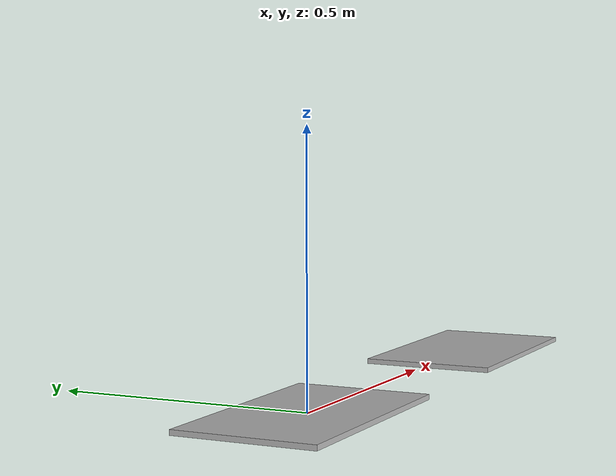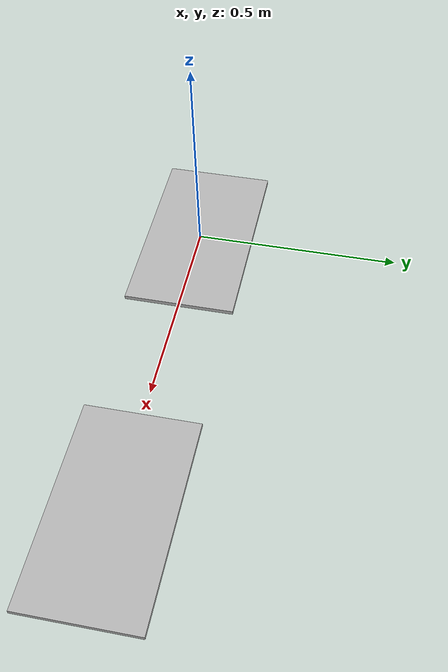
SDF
<?xml version="1.0" ?>
<sdf version="1.6">
  <model name="videopanel">
    <static>true</static>

    <link name="link">

      <visual name="screen1">
        <geometry>
          <box>
            <size>0.4758 0.2673 0.01</size>
          </box>
        </geometry>
        <material>
          <lighting>false</lighting>
          <pbr>
            <metal>
              <albedo_map>materials/textures/monitor1.png</albedo_map>
            </metal>
          </pbr>
        </material>
      </visual>

      <visual name="screen2">
        <pose>0.8 0 0 0 0 3.1415</pose>
        <geometry>
          <box>
            <size>0.4758 0.2673 0.01</size>
          </box>
        </geometry>
        <material>
          <lighting>false</lighting>
          <pbr>
            <metal>
              <albedo_map>materials/textures/monitor2.png</albedo_map>
            </metal>
          </pbr>
        </material>
      </visual>

    </link>

  </model>
</sdf>
